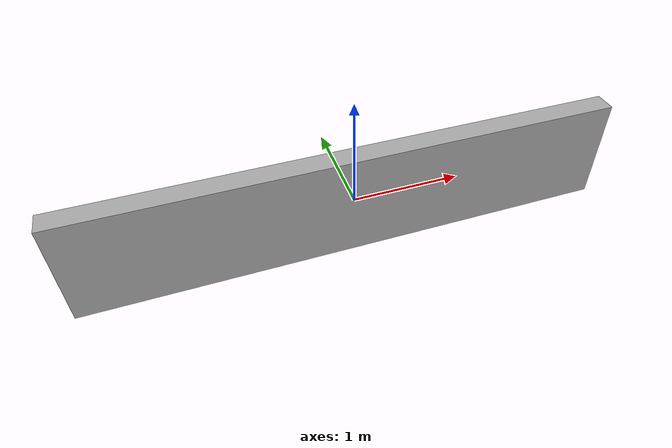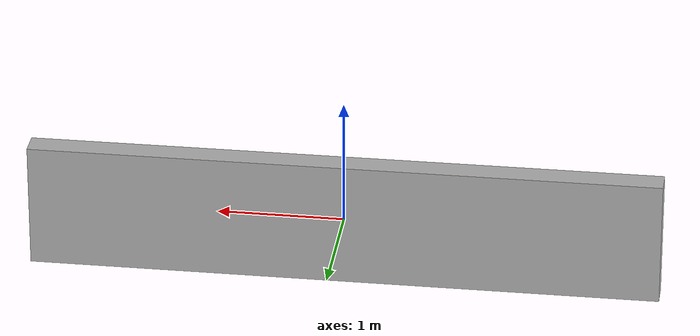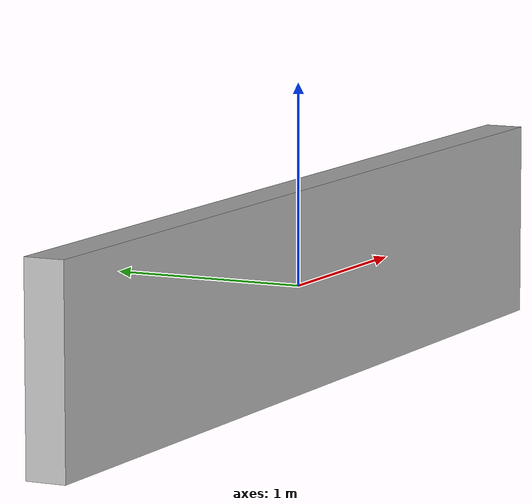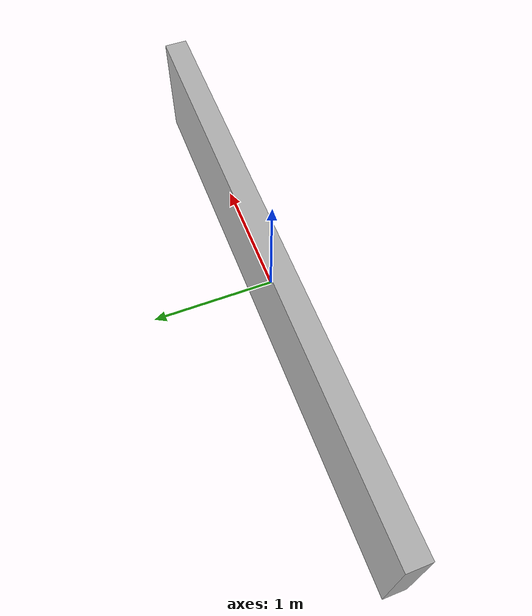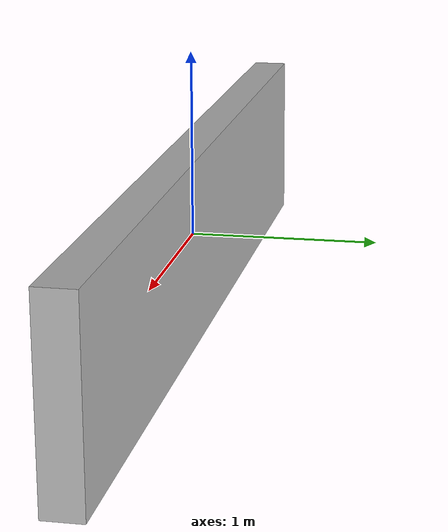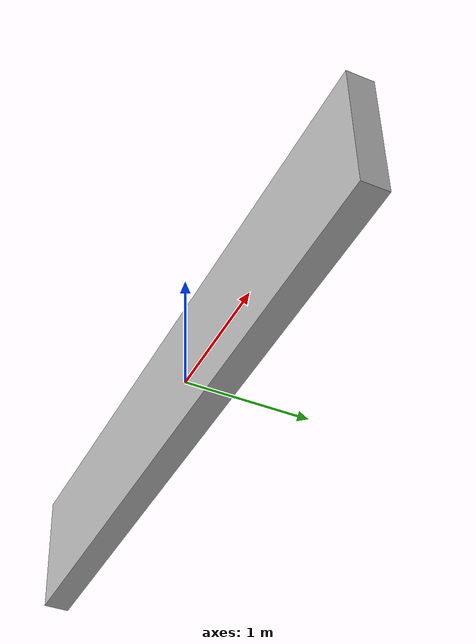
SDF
<?xml version='1.0'?>
<sdf version='1.6'>
  <model name='room_2_wall_top'>
    <static>true</static>
    <link name='link'>
      <collision name='collision'>
        <pose>0 0 0 0 0 0</pose>
        <geometry>
          <box>
            <size>4.99 0.2 1.0</size>
          </box>
        </geometry>
      </collision>
      <visual name='visual'>
        <pose>0 0 0 0 0 0</pose>
        <geometry>
          <box>
            <size>4.99 0.2 1.0</size>
          </box>
        </geometry>
      </visual>
    </link>
  </model>
</sdf>
